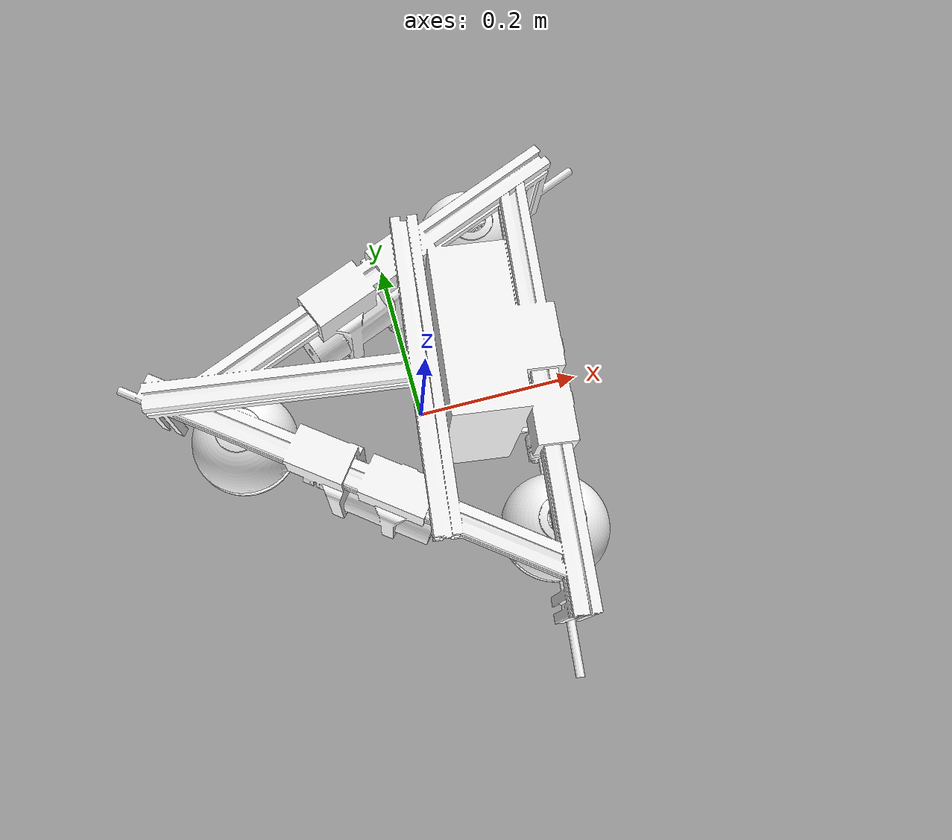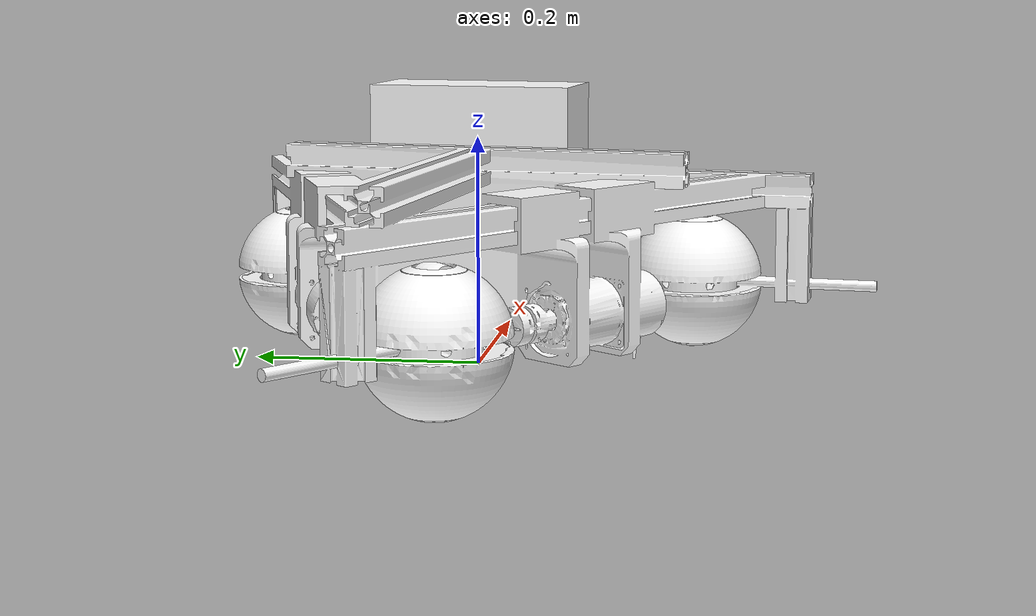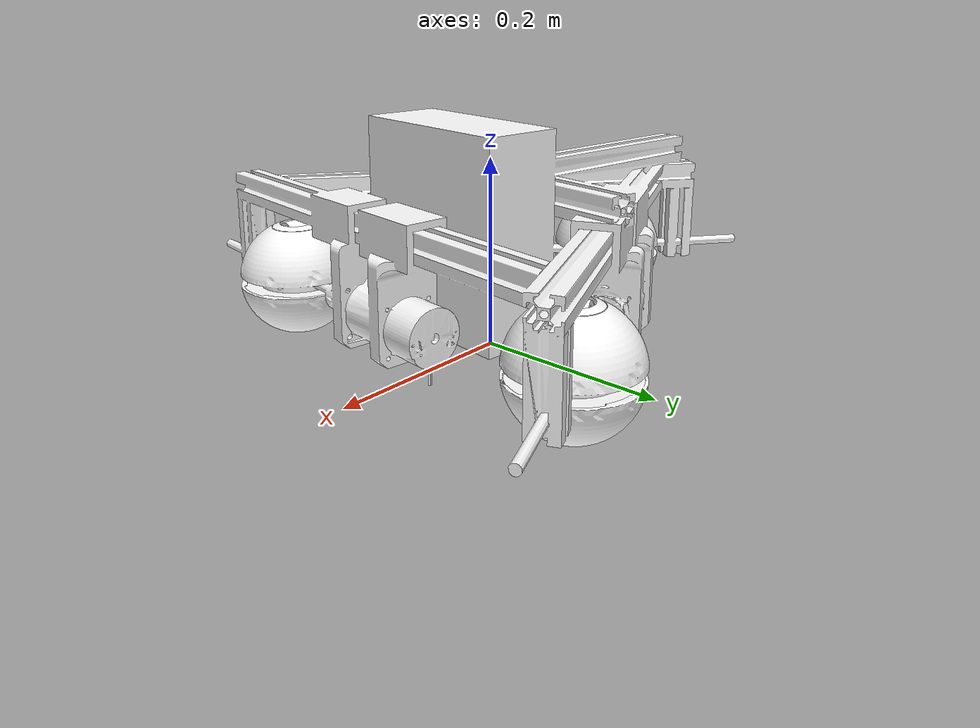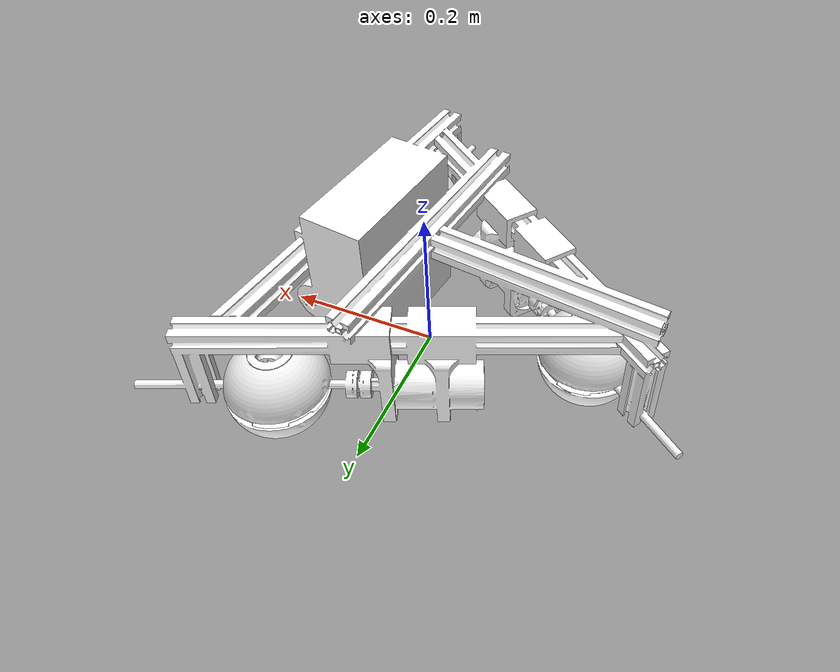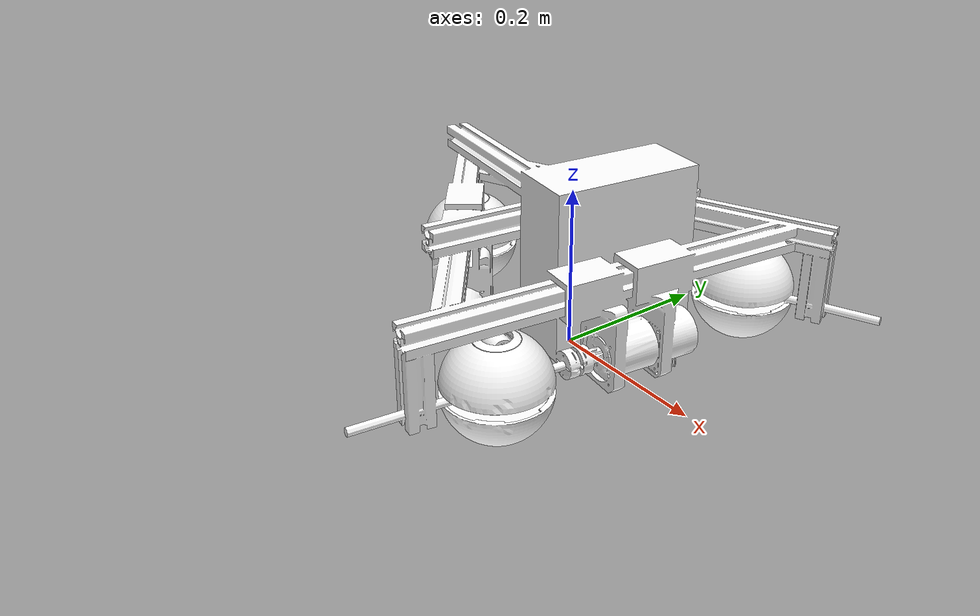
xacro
<?xml version="1.0"?>
<robot xmlns:xacro="http://www.ros.org/wiki/xacro" name="semubot_v2">

  <!-- SemuBot V2: wheelbase only for now. Body, arms and head get added as they are built. -->

  <xacro:arg name="sim" default="false"/>

  <xacro:include filename="$(find semubot_description)/urdf/ros2_control.xacro"/>
  <xacro:if value="$(arg sim)">
    <xacro:include filename="$(find semubot_description)/urdf/semubot.gazebo.xacro"/>
  </xacro:if>

  <!-- Geometry measured from the Onshape export (base_frames v30) by
       scripts/onshape_v2_meshes.py. Forward (+x) is the battery side. -->
  <xacro:property name="wheel_radius" value="0.062"/>
  <xacro:property name="base_radius" value="0.213"/>        <!-- wheel centre to robot centre -->
  <xacro:property name="axle_offset" value="${radians(142.5)}"/> <!-- axle yaw relative to wheel direction -->
  <xacro:property name="ball_mass" value="0.3"/>
  <xacro:property name="frame_mass" value="9.1"/>          <!-- ~10 kg total -->

  <material name="white">
    <color rgba="1 1 1 1"/>
  </material>

  <link name="base_link">
    <visual>
      <geometry>
        <mesh filename="package://semubot_description/meshes/v2/base_frame.stl"/>
      </geometry>
      <material name="white"/>
    </visual>
    <collision>
      <origin xyz="0 0 0.14" rpy="0 0 0"/>
      <geometry>
        <cylinder radius="0.3" length="0.2"/>
      </geometry>
    </collision>
    <inertial>
      <origin xyz="0 0 0.12" rpy="0 0 0"/>
      <mass value="${frame_mass}"/>
      <inertia ixx="${frame_mass * (3 * 0.3**2 + 0.2**2) / 12}" ixy="0.0" ixz="0.0"
               iyy="${frame_mass * (3 * 0.3**2 + 0.2**2) / 12}" iyz="0.0"
               izz="${frame_mass * 0.3**2 / 2}"/>
    </inertial>
  </link>

  <!-- angle: wheel direction from the robot centre, 0 = forward, counter-clockwise -->
  <xacro:macro name="omni_ball" params="n angle">
    <link name="omni_ball_${n}">
      <visual>
        <geometry>
          <mesh filename="package://semubot_description/meshes/v2/omni_ball.stl"/>
        </geometry>
        <material name="white"/>
      </visual>
      <collision>
        <geometry>
          <sphere radius="${wheel_radius}"/>
        </geometry>
      </collision>
      <inertial>
        <mass value="${ball_mass}"/>
        <inertia ixx="${0.4 * ball_mass * wheel_radius**2}" ixy="0.0" ixz="0.0"
                 iyy="${0.4 * ball_mass * wheel_radius**2}" iyz="0.0"
                 izz="${0.4 * ball_mass * wheel_radius**2}"/>
      </inertial>
    </link>

    <joint name="omni_ball_${n}_joint" type="continuous">
      <parent link="base_link"/>
      <child link="omni_ball_${n}"/>
      <origin xyz="${base_radius * cos(angle)} ${base_radius * sin(angle)} ${wheel_radius}"
              rpy="0 0 ${angle + axle_offset}"/>
      <axis xyz="1 0 0"/>
      <limit effort="50" velocity="10.0"/>
    </joint>
  </xacro:macro>

  <!-- Same numbering as V1: 1 front-left, 2 front-right, 3 rear -->
  <xacro:omni_ball n="1" angle="${radians(60)}"/>
  <xacro:omni_ball n="2" angle="${radians(-60)}"/>
  <xacro:omni_ball n="3" angle="${pi}"/>

  <!-- ros2_control Hardware Interface (real robot only; Gazebo uses its own plugins) -->
  <xacro:unless value="$(arg sim)">
    <xacro:semubot_ros2_control wheel_radius="${wheel_radius}" base_radius="${base_radius}"/>
  </xacro:unless>

</robot>
